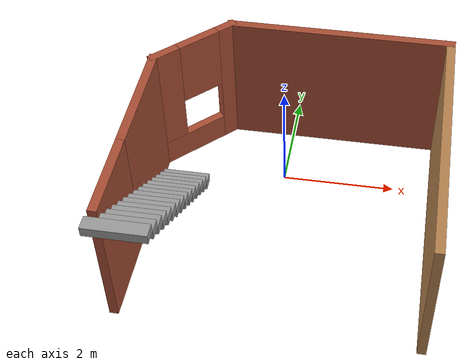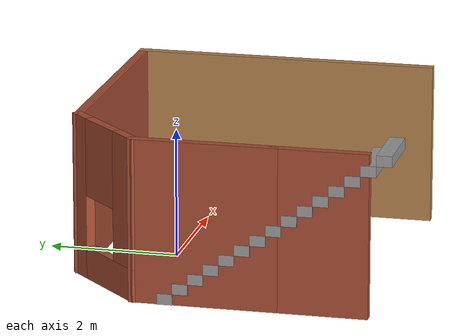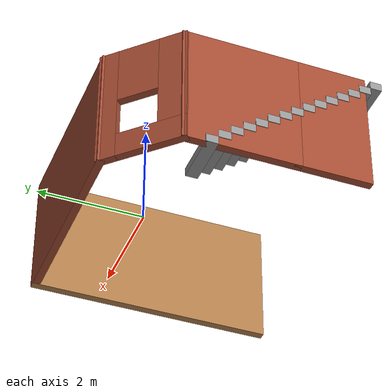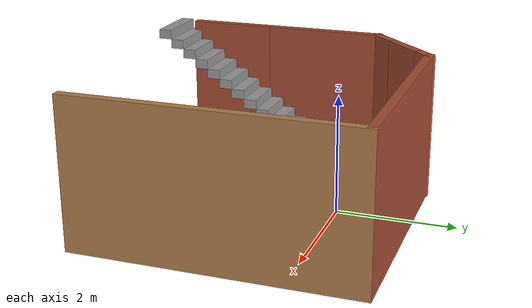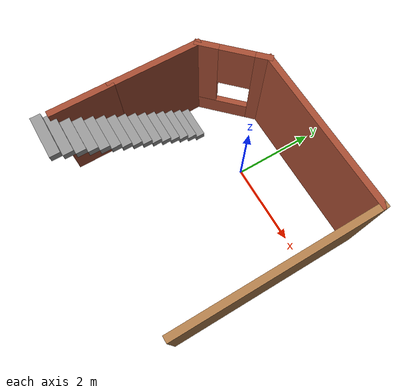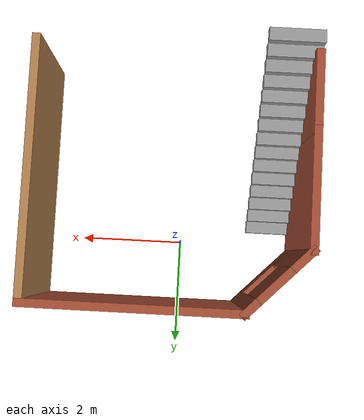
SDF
<?xml version='1.0'?>
<sdf version='1.7'>
  <model name='House_test'>
    <pose>0.206301 -1.23314 0 0 -0 0</pose>
    <link name='Stairs_0'>
      <visual name='Stairs_0_Visual_0'>
        <pose>-2.06185 0.8335 0.083333 0 -0 0</pose>
        <geometry>
          <box>
            <size>1 0.233333 0.166667</size>
          </box>
        </geometry>
        <material>
          <script>
            <uri>file://media/materials/scripts/gazebo.material</uri>
            <name>Gazebo/Grey</name>
          </script>
          <ambient>1 1 1 1</ambient>
        </material>
        <meta>
          <layer>0</layer>
        </meta>
      </visual>
      <collision name='Stairs_0_Collision_0'>
        <geometry>
          <box>
            <size>1 0.233333 0.166667</size>
          </box>
        </geometry>
        <pose>-2.06185 0.8335 0.083333 0 -0 0</pose>
      </collision>
      <visual name='Stairs_0_Visual_1'>
        <pose>-2.06185 0.600167 0.25 0 -0 0</pose>
        <geometry>
          <box>
            <size>1 0.233333 0.166667</size>
          </box>
        </geometry>
        <material>
          <script>
            <uri>file://media/materials/scripts/gazebo.material</uri>
            <name>Gazebo/Grey</name>
          </script>
          <ambient>1 1 1 1</ambient>
        </material>
        <meta>
          <layer>0</layer>
        </meta>
      </visual>
      <collision name='Stairs_0_Collision_1'>
        <geometry>
          <box>
            <size>1 0.233333 0.166667</size>
          </box>
        </geometry>
        <pose>-2.06185 0.600167 0.25 0 -0 0</pose>
      </collision>
      <visual name='Stairs_0_Visual_2'>
        <pose>-2.06185 0.366834 0.416667 0 -0 0</pose>
        <geometry>
          <box>
            <size>1 0.233333 0.166667</size>
          </box>
        </geometry>
        <material>
          <script>
            <uri>file://media/materials/scripts/gazebo.material</uri>
            <name>Gazebo/Grey</name>
          </script>
          <ambient>1 1 1 1</ambient>
        </material>
        <meta>
          <layer>0</layer>
        </meta>
      </visual>
      <collision name='Stairs_0_Collision_2'>
        <geometry>
          <box>
            <size>1 0.233333 0.166667</size>
          </box>
        </geometry>
        <pose>-2.06185 0.366834 0.416667 0 -0 0</pose>
      </collision>
      <visual name='Stairs_0_Visual_3'>
        <pose>-2.06185 0.1335 0.583333 0 -0 0</pose>
        <geometry>
          <box>
            <size>1 0.233333 0.166667</size>
          </box>
        </geometry>
        <material>
          <script>
            <uri>file://media/materials/scripts/gazebo.material</uri>
            <name>Gazebo/Grey</name>
          </script>
          <ambient>1 1 1 1</ambient>
        </material>
        <meta>
          <layer>0</layer>
        </meta>
      </visual>
      <collision name='Stairs_0_Collision_3'>
        <geometry>
          <box>
            <size>1 0.233333 0.166667</size>
          </box>
        </geometry>
        <pose>-2.06185 0.1335 0.583333 0 -0 0</pose>
      </collision>
      <visual name='Stairs_0_Visual_4'>
        <pose>-2.06185 -0.099833 0.75 0 -0 0</pose>
        <geometry>
          <box>
            <size>1 0.233333 0.166667</size>
          </box>
        </geometry>
        <material>
          <script>
            <uri>file://media/materials/scripts/gazebo.material</uri>
            <name>Gazebo/Grey</name>
          </script>
          <ambient>1 1 1 1</ambient>
        </material>
        <meta>
          <layer>0</layer>
        </meta>
      </visual>
      <collision name='Stairs_0_Collision_4'>
        <geometry>
          <box>
            <size>1 0.233333 0.166667</size>
          </box>
        </geometry>
        <pose>-2.06185 -0.099833 0.75 0 -0 0</pose>
      </collision>
      <visual name='Stairs_0_Visual_5'>
        <pose>-2.06185 -0.333166 0.916667 0 -0 0</pose>
        <geometry>
          <box>
            <size>1 0.233333 0.166667</size>
          </box>
        </geometry>
        <material>
          <script>
            <uri>file://media/materials/scripts/gazebo.material</uri>
            <name>Gazebo/Grey</name>
          </script>
          <ambient>1 1 1 1</ambient>
        </material>
        <meta>
          <layer>0</layer>
        </meta>
      </visual>
      <collision name='Stairs_0_Collision_5'>
        <geometry>
          <box>
            <size>1 0.233333 0.166667</size>
          </box>
        </geometry>
        <pose>-2.06185 -0.333166 0.916667 0 -0 0</pose>
      </collision>
      <visual name='Stairs_0_Visual_6'>
        <pose>-2.06185 -0.5665 1.08333 0 -0 0</pose>
        <geometry>
          <box>
            <size>1 0.233333 0.166667</size>
          </box>
        </geometry>
        <material>
          <script>
            <uri>file://media/materials/scripts/gazebo.material</uri>
            <name>Gazebo/Grey</name>
          </script>
          <ambient>1 1 1 1</ambient>
        </material>
        <meta>
          <layer>0</layer>
        </meta>
      </visual>
      <collision name='Stairs_0_Collision_6'>
        <geometry>
          <box>
            <size>1 0.233333 0.166667</size>
          </box>
        </geometry>
        <pose>-2.06185 -0.5665 1.08333 0 -0 0</pose>
      </collision>
      <visual name='Stairs_0_Visual_7'>
        <pose>-2.06185 -0.799833 1.25 0 -0 0</pose>
        <geometry>
          <box>
            <size>1 0.233333 0.166667</size>
          </box>
        </geometry>
        <material>
          <script>
            <uri>file://media/materials/scripts/gazebo.material</uri>
            <name>Gazebo/Grey</name>
          </script>
          <ambient>1 1 1 1</ambient>
        </material>
        <meta>
          <layer>0</layer>
        </meta>
      </visual>
      <collision name='Stairs_0_Collision_7'>
        <geometry>
          <box>
            <size>1 0.233333 0.166667</size>
          </box>
        </geometry>
        <pose>-2.06185 -0.799833 1.25 0 -0 0</pose>
      </collision>
      <visual name='Stairs_0_Visual_8'>
        <pose>-2.06185 -1.03317 1.41667 0 -0 0</pose>
        <geometry>
          <box>
            <size>1 0.233333 0.166667</size>
          </box>
        </geometry>
        <material>
          <script>
            <uri>file://media/materials/scripts/gazebo.material</uri>
            <name>Gazebo/Grey</name>
          </script>
          <ambient>1 1 1 1</ambient>
        </material>
        <meta>
          <layer>0</layer>
        </meta>
      </visual>
      <collision name='Stairs_0_Collision_8'>
        <geometry>
          <box>
            <size>1 0.233333 0.166667</size>
          </box>
        </geometry>
        <pose>-2.06185 -1.03317 1.41667 0 -0 0</pose>
      </collision>
      <visual name='Stairs_0_Visual_9'>
        <pose>-2.06185 -1.2665 1.58333 0 -0 0</pose>
        <geometry>
          <box>
            <size>1 0.233333 0.166667</size>
          </box>
        </geometry>
        <material>
          <script>
            <uri>file://media/materials/scripts/gazebo.material</uri>
            <name>Gazebo/Grey</name>
          </script>
          <ambient>1 1 1 1</ambient>
        </material>
        <meta>
          <layer>0</layer>
        </meta>
      </visual>
      <collision name='Stairs_0_Collision_9'>
        <geometry>
          <box>
            <size>1 0.233333 0.166667</size>
          </box>
        </geometry>
        <pose>-2.06185 -1.2665 1.58333 0 -0 0</pose>
      </collision>
      <visual name='Stairs_0_Visual_10'>
        <pose>-2.06185 -1.49983 1.75 0 -0 0</pose>
        <geometry>
          <box>
            <size>1 0.233333 0.166667</size>
          </box>
        </geometry>
        <material>
          <script>
            <uri>file://media/materials/scripts/gazebo.material</uri>
            <name>Gazebo/Grey</name>
          </script>
          <ambient>1 1 1 1</ambient>
        </material>
        <meta>
          <layer>0</layer>
        </meta>
      </visual>
      <collision name='Stairs_0_Collision_10'>
        <geometry>
          <box>
            <size>1 0.233333 0.166667</size>
          </box>
        </geometry>
        <pose>-2.06185 -1.49983 1.75 0 -0 0</pose>
      </collision>
      <visual name='Stairs_0_Visual_11'>
        <pose>-2.06185 -1.73317 1.91667 0 -0 0</pose>
        <geometry>
          <box>
            <size>1 0.233333 0.166667</size>
          </box>
        </geometry>
        <material>
          <script>
            <uri>file://media/materials/scripts/gazebo.material</uri>
            <name>Gazebo/Grey</name>
          </script>
          <ambient>1 1 1 1</ambient>
        </material>
        <meta>
          <layer>0</layer>
        </meta>
      </visual>
      <collision name='Stairs_0_Collision_11'>
        <geometry>
          <box>
            <size>1 0.233333 0.166667</size>
          </box>
        </geometry>
        <pose>-2.06185 -1.73317 1.91667 0 -0 0</pose>
      </collision>
      <visual name='Stairs_0_Visual_12'>
        <pose>-2.06185 -1.9665 2.08333 0 -0 0</pose>
        <geometry>
          <box>
            <size>1 0.233333 0.166667</size>
          </box>
        </geometry>
        <material>
          <script>
            <uri>file://media/materials/scripts/gazebo.material</uri>
            <name>Gazebo/Grey</name>
          </script>
          <ambient>1 1 1 1</ambient>
        </material>
        <meta>
          <layer>0</layer>
        </meta>
      </visual>
      <collision name='Stairs_0_Collision_12'>
        <geometry>
          <box>
            <size>1 0.233333 0.166667</size>
          </box>
        </geometry>
        <pose>-2.06185 -1.9665 2.08333 0 -0 0</pose>
      </collision>
      <visual name='Stairs_0_Visual_13'>
        <pose>-2.06185 -2.19983 2.25 0 -0 0</pose>
        <geometry>
          <box>
            <size>1 0.233333 0.166667</size>
          </box>
        </geometry>
        <material>
          <script>
            <uri>file://media/materials/scripts/gazebo.material</uri>
            <name>Gazebo/Grey</name>
          </script>
          <ambient>1 1 1 1</ambient>
        </material>
        <meta>
          <layer>0</layer>
        </meta>
      </visual>
      <collision name='Stairs_0_Collision_13'>
        <geometry>
          <box>
            <size>1 0.233333 0.166667</size>
          </box>
        </geometry>
        <pose>-2.06185 -2.19983 2.25 0 -0 0</pose>
      </collision>
      <visual name='Stairs_0_Visual_14'>
        <pose>-2.06185 -2.43317 2.41667 0 -0 0</pose>
        <geometry>
          <box>
            <size>1 0.233333 0.166667</size>
          </box>
        </geometry>
        <material>
          <script>
            <uri>file://media/materials/scripts/gazebo.material</uri>
            <name>Gazebo/Grey</name>
          </script>
          <ambient>1 1 1 1</ambient>
        </material>
        <meta>
          <layer>0</layer>
        </meta>
      </visual>
      <collision name='Stairs_0_Collision_14'>
        <geometry>
          <box>
            <size>1 0.233333 0.166667</size>
          </box>
        </geometry>
        <pose>-2.06185 -2.43317 2.41667 0 -0 0</pose>
      </collision>
    </link>
    <link name='Wall_10'>
      <collision name='Wall_10_Collision'>
        <geometry>
          <box>
            <size>2.25 0.15 2.5</size>
          </box>
        </geometry>
        <pose>0 0 1.25 0 -0 0</pose>
      </collision>
      <visual name='Wall_10_Visual'>
        <pose>0 0 1.25 0 -0 0</pose>
        <geometry>
          <box>
            <size>2.25 0.15 2.5</size>
          </box>
        </geometry>
        <material>
          <script>
            <uri>file://media/materials/scripts/gazebo.material</uri>
            <name>Gazebo/Bricks</name>
          </script>
          <ambient>1 1 1 1</ambient>
        </material>
        <meta>
          <layer>0</layer>
        </meta>
      </visual>
      <pose>-2.47515 0.262396 0 0 -0 -1.5708</pose>
    </link>
    <link name='Wall_11'>
      <collision name='Wall_11_Collision'>
        <geometry>
          <box>
            <size>1.5 0.15 2.5</size>
          </box>
        </geometry>
        <pose>0 0 1.25 0 -0 0</pose>
      </collision>
      <visual name='Wall_11_Visual'>
        <pose>0 0 1.25 0 -0 0</pose>
        <geometry>
          <box>
            <size>1.5 0.15 2.5</size>
          </box>
        </geometry>
        <material>
          <script>
            <uri>file://media/materials/scripts/gazebo.material</uri>
            <name>Gazebo/Bricks</name>
          </script>
          <ambient>1 1 1 1</ambient>
        </material>
        <meta>
          <layer>0</layer>
        </meta>
      </visual>
      <pose>-2.47515 -1.4626 0 0 -0 -1.5708</pose>
    </link>
    <link name='Wall_13'>
      <collision name='Wall_13_Collision'>
        <geometry>
          <box>
            <size>4.75 0.15 2.5</size>
          </box>
        </geometry>
        <pose>0 0 1.25 0 -0 0</pose>
      </collision>
      <visual name='Wall_13_Visual'>
        <pose>0 0 1.25 0 -0 0</pose>
        <geometry>
          <box>
            <size>4.75 0.15 2.5</size>
          </box>
        </geometry>
        <material>
          <script>
            <uri>file://media/materials/scripts/gazebo.material</uri>
            <name>Gazebo/Wood</name>
          </script>
          <ambient>1 1 1 1</ambient>
        </material>
        <meta>
          <layer>0</layer>
        </meta>
      </visual>
      <pose>2.50622 0.143767 0 0 -0 -1.5708</pose>
    </link>
    <link name='Wall_7'>
      <collision name='Wall_7_Collision'>
        <geometry>
          <box>
            <size>4 0.15 2.5</size>
          </box>
        </geometry>
        <pose>0 0 1.25 0 -0 0</pose>
      </collision>
      <visual name='Wall_7_Visual'>
        <pose>0 0 1.25 0 -0 0</pose>
        <geometry>
          <box>
            <size>4 0.15 2.5</size>
          </box>
        </geometry>
        <material>
          <script>
            <uri>file://media/materials/scripts/gazebo.material</uri>
            <name>Gazebo/Bricks</name>
          </script>
          <ambient>1 1 1 1</ambient>
        </material>
        <meta>
          <layer>0</layer>
        </meta>
      </visual>
      <pose>0.581218 2.44377 0 0 -0 0</pose>
    </link>
    <link name='Wall_9'>
      <pose>-1.90947 1.87808 0 0 -0 -2.35619</pose>
      <visual name='Wall_9_Visual_0'>
        <pose>-0.679708 0 1.25 0 -0 0</pose>
        <geometry>
          <box>
            <size>0.390585 0.15 2.5</size>
          </box>
        </geometry>
        <material>
          <script>
            <uri>file://media/materials/scripts/gazebo.material</uri>
            <name>Gazebo/Bricks</name>
          </script>
          <ambient>1 1 1 1</ambient>
        </material>
        <meta>
          <layer>0</layer>
        </meta>
      </visual>
      <collision name='Wall_9_Collision_0'>
        <geometry>
          <box>
            <size>0.390585 0.15 2.5</size>
          </box>
        </geometry>
        <pose>-0.679708 0 1.25 0 -0 0</pose>
      </collision>
      <visual name='Wall_9_Visual_1'>
        <pose>0.195292 0 0.25 0 -0 0</pose>
        <geometry>
          <box>
            <size>1.35942 0.15 0.5</size>
          </box>
        </geometry>
        <material>
          <script>
            <uri>file://media/materials/scripts/gazebo.material</uri>
            <name>Gazebo/Bricks</name>
          </script>
          <ambient>1 1 1 1</ambient>
        </material>
        <meta>
          <layer>0</layer>
        </meta>
      </visual>
      <collision name='Wall_9_Collision_1'>
        <geometry>
          <box>
            <size>1.35942 0.15 0.5</size>
          </box>
        </geometry>
        <pose>0.195292 0 0.25 0 -0 0</pose>
      </collision>
      <visual name='Wall_9_Visual_2'>
        <pose>0.595292 0 1.5 0 -0 0</pose>
        <geometry>
          <box>
            <size>0.559415 0.15 2</size>
          </box>
        </geometry>
        <material>
          <script>
            <uri>file://media/materials/scripts/gazebo.material</uri>
            <name>Gazebo/Bricks</name>
          </script>
          <ambient>1 1 1 1</ambient>
        </material>
        <meta>
          <layer>0</layer>
        </meta>
      </visual>
      <collision name='Wall_9_Collision_2'>
        <geometry>
          <box>
            <size>0.559415 0.15 2</size>
          </box>
        </geometry>
        <pose>0.595292 0 1.5 0 -0 0</pose>
      </collision>
      <visual name='Wall_9_Visual_3'>
        <pose>-0.084415 0 1.9 0 -0 0</pose>
        <geometry>
          <box>
            <size>0.8 0.15 1.2</size>
          </box>
        </geometry>
        <material>
          <script>
            <uri>file://media/materials/scripts/gazebo.material</uri>
            <name>Gazebo/Bricks</name>
          </script>
          <ambient>1 1 1 1</ambient>
        </material>
        <meta>
          <layer>0</layer>
        </meta>
      </visual>
      <collision name='Wall_9_Collision_3'>
        <geometry>
          <box>
            <size>0.8 0.15 1.2</size>
          </box>
        </geometry>
        <pose>-0.084415 0 1.9 0 -0 0</pose>
      </collision>
    </link>
    <static>1</static>
  </model>
</sdf>
